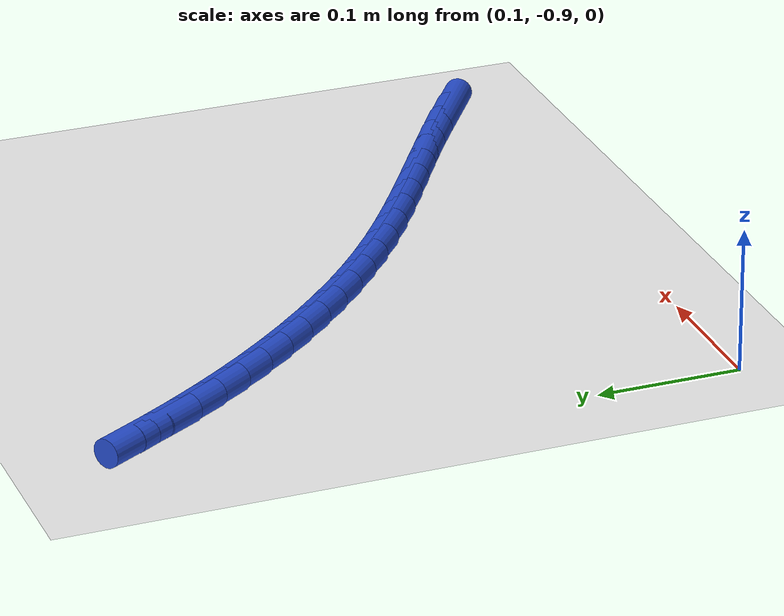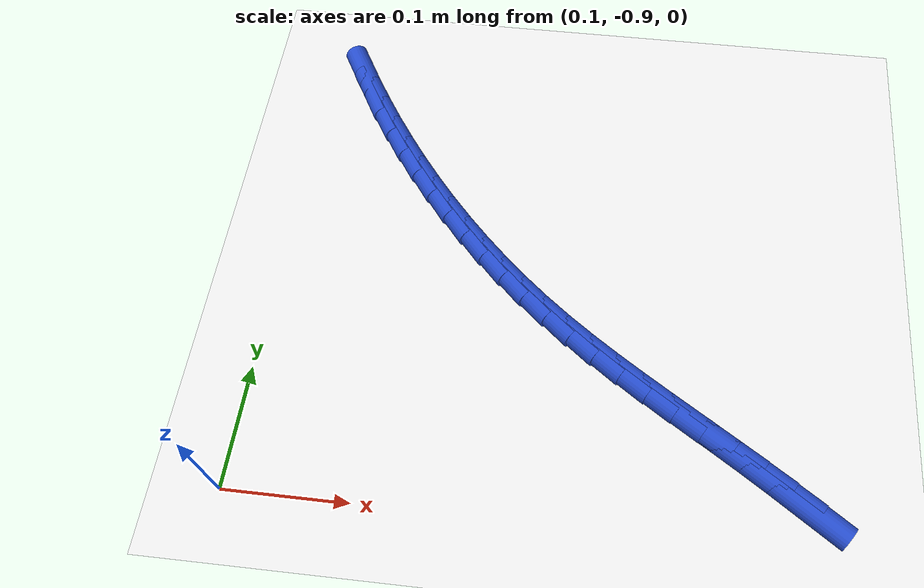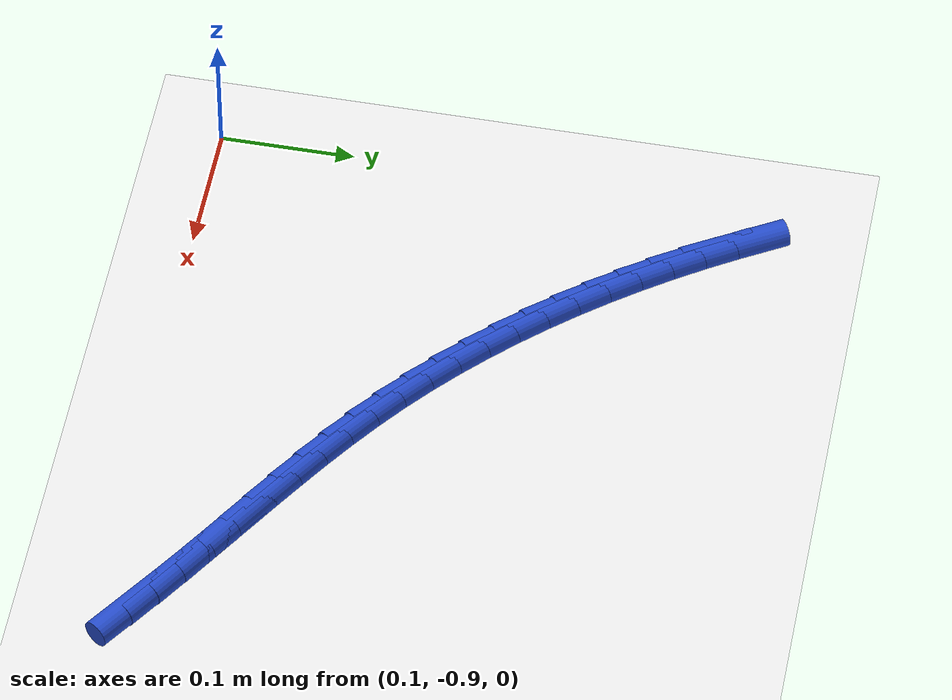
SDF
<sdf version="1.6">
 <world name="default">
  <model name="ground_plane">
   <static>1</static>
   <link name="link">
    <collision name="collision">
     <geometry><plane><normal>0 0 1</normal><size>100 100</size></plane></geometry>
     <surface><friction><ode><mu>100</mu><mu2>50</mu2></ode></friction></surface>
    </collision>
    <visual name="visual">
     <cast_shadows>0</cast_shadows>
     <geometry><plane><normal>0 0 1</normal><size>100 100</size></plane></geometry>
     <material>
      <script><uri>file://media/materials/scripts/gazebo.material</uri><name>Gazebo/WhiteGlow</name></script>
     </material>
    </visual>
   </link>
  </model>
  <model name="line">
   <link name="link_218">
    <pose>0.5327043631946564 -0.8670059177250806 0.01 0 1.57 -0.6002242192002845</pose>
    <collision name="collision">
     <geometry><cylinder><radius>0.01</radius><length>0.08</length></cylinder></geometry>
    </collision>
    <visual name="visual">
     <material>
      <script><name>Gazebo/Blue</name><uri>file://media/materials/scripts/gazebo.material</uri></script>
     </material>
     <geometry><cylinder><radius>0.01</radius><length>0.08</length></cylinder></geometry>
    </visual>
   </link>
   <link name="link_219">
    <pose>0.5118196414120127 -0.8527110352793874 0.01 0 1.57 -0.5850665469596666</pose>
    <collision name="collision">
     <geometry><cylinder><radius>0.01</radius><length>0.08</length></cylinder></geometry>
    </collision>
    <visual name="visual">
     <material>
      <script><name>Gazebo/Blue</name><uri>file://media/materials/scripts/gazebo.material</uri></script>
     </material>
     <geometry><cylinder><radius>0.01</radius><length>0.08</length></cylinder></geometry>
    </visual>
   </link>
   <link name="link_220">
    <pose>0.49067833619086865 -0.8387063165553428 0.01 0 1.57 -0.5714909172815527</pose>
    <collision name="collision">
     <geometry><cylinder><radius>0.01</radius><length>0.08</length></cylinder></geometry>
    </collision>
    <visual name="visual">
     <material>
      <script><name>Gazebo/Blue</name><uri>file://media/materials/scripts/gazebo.material</uri></script>
     </material>
     <geometry><cylinder><radius>0.01</radius><length>0.08</length></cylinder></geometry>
    </visual>
   </link>
   <link name="link_221">
    <pose>0.46929837800570123 -0.8249574210672695 0.01 0 1.57 -0.5645987934552227</pose>
    <collision name="collision">
     <geometry><cylinder><radius>0.01</radius><length>0.08</length></cylinder></geometry>
    </collision>
    <visual name="visual">
     <material>
      <script><name>Gazebo/Blue</name><uri>file://media/materials/scripts/gazebo.material</uri></script>
     </material>
     <geometry><cylinder><radius>0.01</radius><length>0.08</length></cylinder></geometry>
    </visual>
   </link>
   <link name="link_222">
    <pose>0.4477861586172713 -0.8113321292988307 0.01 0 1.57 -0.5644954172644996</pose>
    <collision name="collision">
     <geometry><cylinder><radius>0.01</radius><length>0.08</length></cylinder></geometry>
    </collision>
    <visual name="visual">
     <material>
      <script><name>Gazebo/Blue</name><uri>file://media/materials/scripts/gazebo.material</uri></script>
     </material>
     <geometry><cylinder><radius>0.01</radius><length>0.08</length></cylinder></geometry>
    </visual>
   </link>
   <link name="link_223">
    <pose>0.4262507425174877 -0.7976952644588758 0.01 0 1.57 -0.5711599619625736</pose>
    <collision name="collision">
     <geometry><cylinder><radius>0.01</radius><length>0.08</length></cylinder></geometry>
    </collision>
    <visual name="visual">
     <material>
      <script><name>Gazebo/Blue</name><uri>file://media/materials/scripts/gazebo.material</uri></script>
     </material>
     <geometry><cylinder><radius>0.01</radius><length>0.08</length></cylinder></geometry>
    </visual>
   </link>
   <link name="link_224">
    <pose>0.40480119419825966 -0.7839116497562554 0.01 0 1.57 -0.5846008183188592</pose>
    <collision name="collision">
     <geometry><cylinder><radius>0.01</radius><length>0.08</length></cylinder></geometry>
    </collision>
    <visual name="visual">
     <material>
      <script><name>Gazebo/Blue</name><uri>file://media/materials/scripts/gazebo.material</uri></script>
     </material>
     <geometry><cylinder><radius>0.01</radius><length>0.08</length></cylinder></geometry>
    </visual>
   </link>
   <link name="link_225">
    <pose>0.38354657815149634 -0.7698461083998194 0.01 0 1.57 -0.6048464024103037</pose>
    <collision name="collision">
     <geometry><cylinder><radius>0.01</radius><length>0.08</length></cylinder></geometry>
    </collision>
    <visual name="visual">
     <material>
      <script><name>Gazebo/Blue</name><uri>file://media/materials/scripts/gazebo.material</uri></script>
     </material>
     <geometry><cylinder><radius>0.01</radius><length>0.08</length></cylinder></geometry>
    </visual>
   </link>
   <link name="link_226">
    <pose>0.3625959588691067 -0.7553634635984179 0.01 0 1.57 -0.6319266475388562</pose>
    <collision name="collision">
     <geometry><cylinder><radius>0.01</radius><length>0.08</length></cylinder></geometry>
    </collision>
    <visual name="visual">
     <material>
      <script><name>Gazebo/Blue</name><uri>file://media/materials/scripts/gazebo.material</uri></script>
     </material>
     <geometry><cylinder><radius>0.01</radius><length>0.08</length></cylinder></geometry>
    </visual>
   </link>
   <link name="link_227">
    <pose>0.34205840084299993 -0.7403285385609006 0.01 0 1.57 -0.66569499279065</pose>
    <collision name="collision">
     <geometry><cylinder><radius>0.01</radius><length>0.08</length></cylinder></geometry>
    </collision>
    <visual name="visual">
     <material>
      <script><name>Gazebo/Blue</name><uri>file://media/materials/scripts/gazebo.material</uri></script>
     </material>
     <geometry><cylinder><radius>0.01</radius><length>0.08</length></cylinder></geometry>
    </visual>
   </link>
   <link name="link_228">
    <pose>0.32204093270187234 -0.7246094046869355 0.01 0 1.57 -0.7024136394521752</pose>
    <collision name="collision">
     <geometry><cylinder><radius>0.01</radius><length>0.08</length></cylinder></geometry>
    </collision>
    <visual name="visual">
     <material>
      <script><name>Gazebo/Blue</name><uri>file://media/materials/scripts/gazebo.material</uri></script>
     </material>
     <geometry><cylinder><radius>0.01</radius><length>0.08</length></cylinder></geometry>
    </visual>
   </link>
   <link name="link_229">
    <pose>0.3026002791843226 -0.708154392517814 0.01 0 1.57 -0.7382258034476842</pose>
    <collision name="collision">
     <geometry><cylinder><radius>0.01</radius><length>0.08</length></cylinder></geometry>
    </collision>
    <visual name="visual">
     <material>
      <script><name>Gazebo/Blue</name><uri>file://media/materials/scripts/gazebo.material</uri></script>
     </material>
     <geometry><cylinder><radius>0.01</radius><length>0.08</length></cylinder></geometry>
    </visual>
   </link>
   <link name="link_230">
    <pose>0.2837408488925704 -0.6909953022467958 0.01 0 1.57 -0.7729690743095485</pose>
    <collision name="collision">
     <geometry><cylinder><radius>0.01</radius><length>0.08</length></cylinder></geometry>
    </collision>
    <visual name="visual">
     <material>
      <script><name>Gazebo/Blue</name><uri>file://media/materials/scripts/gazebo.material</uri></script>
     </material>
     <geometry><cylinder><radius>0.01</radius><length>0.08</length></cylinder></geometry>
    </visual>
   </link>
   <link name="link_231">
    <pose>0.2654646119222695 -0.673167824669701 0.01 0 1.57 -0.8066694771929432</pose>
    <collision name="collision">
     <geometry><cylinder><radius>0.01</radius><length>0.08</length></cylinder></geometry>
    </collision>
    <visual name="visual">
     <material>
      <script><name>Gazebo/Blue</name><uri>file://media/materials/scripts/gazebo.material</uri></script>
     </material>
     <geometry><cylinder><radius>0.01</radius><length>0.08</length></cylinder></geometry>
    </visual>
   </link>
   <link name="link_232">
    <pose>0.24777353836907476 -0.6547076505823503 0.01 0 1.57 -0.8393606371942274</pose>
    <collision name="collision">
     <geometry><cylinder><radius>0.01</radius><length>0.08</length></cylinder></geometry>
    </collision>
    <visual name="visual">
     <material>
      <script><name>Gazebo/Blue</name><uri>file://media/materials/scripts/gazebo.material</uri></script>
     </material>
     <geometry><cylinder><radius>0.01</radius><length>0.08</length></cylinder></geometry>
    </visual>
   </link>
   <link name="link_233">
    <pose>0.2306695983286403 -0.6356504707805639 0.01 0 1.57 -0.8710824607252475</pose>
    <collision name="collision">
     <geometry><cylinder><radius>0.01</radius><length>0.08</length></cylinder></geometry>
    </collision>
    <visual name="visual">
     <material>
      <script><name>Gazebo/Blue</name><uri>file://media/materials/scripts/gazebo.material</uri></script>
     </material>
     <geometry><cylinder><radius>0.01</radius><length>0.08</length></cylinder></geometry>
    </visual>
   </link>
   <link name="link_234">
    <pose>0.2141547618966209 -0.6160319760601625 0.01 0 1.57 -0.9018799574244847</pose>
    <collision name="collision">
     <geometry><cylinder><radius>0.01</radius><length>0.08</length></cylinder></geometry>
    </collision>
    <visual name="visual">
     <material>
      <script><name>Gazebo/Blue</name><uri>file://media/materials/scripts/gazebo.material</uri></script>
     </material>
     <geometry><cylinder><radius>0.01</radius><length>0.08</length></cylinder></geometry>
    </visual>
   </link>
   <link name="link_235">
    <pose>0.19823099916867087 -0.5958878572169668 0.01 0 1.57 -0.9318022143614391</pose>
    <collision name="collision">
     <geometry><cylinder><radius>0.01</radius><length>0.08</length></cylinder></geometry>
    </collision>
    <visual name="visual">
     <material>
      <script><name>Gazebo/Blue</name><uri>file://media/materials/scripts/gazebo.material</uri></script>
     </material>
     <geometry><cylinder><radius>0.01</radius><length>0.08</length></cylinder></geometry>
    </visual>
   </link>
   <link name="link_236">
    <pose>0.18290028024044427 -0.5752538050467961 0.01 0 1.57 -0.9609015254317337</pose>
    <collision name="collision">
     <geometry><cylinder><radius>0.01</radius><length>0.08</length></cylinder></geometry>
    </collision>
    <visual name="visual">
     <material>
      <script><name>Gazebo/Blue</name><uri>file://media/materials/scripts/gazebo.material</uri></script>
     </material>
     <geometry><cylinder><radius>0.01</radius><length>0.08</length></cylinder></geometry>
    </visual>
   </link>
   <link name="link_237">
    <pose>0.16816457520759662 -0.5541655103454726 0.01 0 1.57 -0.9892326724679722</pose>
    <collision name="collision">
     <geometry><cylinder><radius>0.01</radius><length>0.08</length></cylinder></geometry>
    </collision>
    <visual name="visual">
     <material>
      <script><name>Gazebo/Blue</name><uri>file://media/materials/scripts/gazebo.material</uri></script>
     </material>
     <geometry><cylinder><radius>0.01</radius><length>0.08</length></cylinder></geometry>
    </visual>
   </link>
   <link name="link_238">
    <pose>0.15402585416578193 -0.5326586639088161 0.01 0 1.57 -1.0168523503704803</pose>
    <collision name="collision">
     <geometry><cylinder><radius>0.01</radius><length>0.08</length></cylinder></geometry>
    </collision>
    <visual name="visual">
     <material>
      <script><name>Gazebo/Blue</name><uri>file://media/materials/scripts/gazebo.material</uri></script>
     </material>
     <geometry><cylinder><radius>0.01</radius><length>0.08</length></cylinder></geometry>
    </visual>
   </link>
   <link name="link_239">
    <pose>0.14048608721065464 -0.5107689565326472 0.01 0 1.57 -1.0438187261057004</pose>
    <collision name="collision">
     <geometry><cylinder><radius>0.01</radius><length>0.08</length></cylinder></geometry>
    </collision>
    <visual name="visual">
     <material>
      <script><name>Gazebo/Blue</name><uri>file://media/materials/scripts/gazebo.material</uri></script>
     </material>
     <geometry><cylinder><radius>0.01</radius><length>0.08</length></cylinder></geometry>
    </visual>
   </link>
  </model>
 </world>
</sdf>
